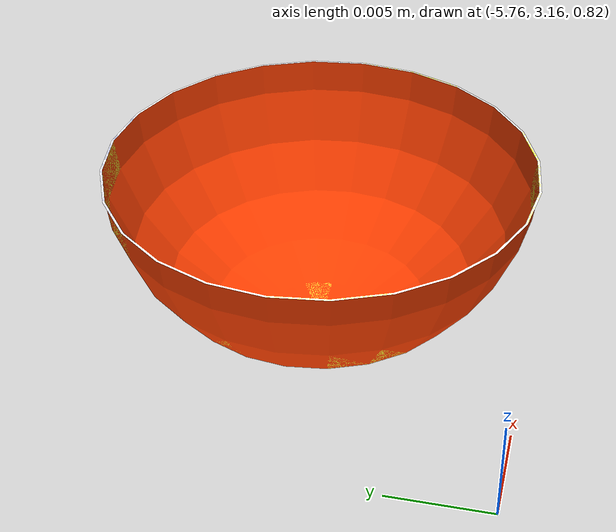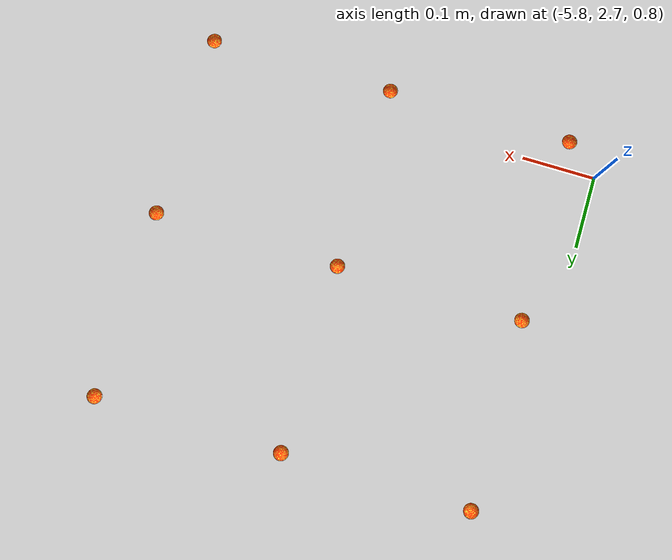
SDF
<sdf version="1.4">
 <world name="default">
  <include><uri>model://ground_plane</uri></include>
  <include><uri>model://sun</uri></include>
  <include><uri>model://bracket</uri><name>cube1</name><pose>3.8 3.15 0.83 0 0 0.78</pose></include>
  <include><uri>model://bracket</uri><name>cube2</name><pose>-3.24 -4.05 0.83 0 0 -0.78</pose></include>
  <include><uri>model://bowl</uri><pose>-5.5 2.92 0.83 0 0 0</pose><name>bowl1</name></include>
  <include><uri>model://bowl</uri><pose>-5.25 2.92 0.83 0 0 0</pose><name>bowl2</name></include>
  <include><uri>model://bowl</uri><pose>-5.75 2.92 0.83 0 0 0</pose><name>bowl3</name></include>
  <include><uri>model://bowl</uri><pose>-5.5 2.67 0.83 0 0 0</pose><name>bowl4</name></include>
  <include><uri>model://bowl</uri><pose>-5.5 3.17 0.83 0 0 0</pose><name>bowl5</name></include>
  <include><uri>model://bowl</uri><pose>-5.25 3.17 0.83 0 0 0</pose><name>bowl6</name></include>
  <include><uri>model://bowl</uri><pose>-5.25 2.67 0.83 0 0 0</pose><name>bowl7</name></include>
  <include><uri>model://bowl</uri><pose>-5.75 3.17 0.83 0 0 0</pose><name>bowl8</name></include>
  <include><uri>model://bowl</uri><pose>-5.75 2.67 0.83 0 0 0</pose><name>bowl9</name></include>
 </world>
</sdf>

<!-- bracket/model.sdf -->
<sdf version='1.4'>
  <model name="bracket">
      <static>0</static>
      <link name='link'>
        <inertial>
          <mass>0.25</mass>
          <inertia>
            <ixx>0.001</ixx>
            <ixy>0.000000</ixy>
            <ixz>0.000000</ixz>
            <iyy>0.001</iyy>
            <iyz>0.000000</iyz>
            <izz>0.001</izz>
          </inertia>
        </inertial>
        <collision name='collision1'>
          <pose>-0.035 0 0 0 0 0</pose>
          <geometry>
            <box>
              <size>0.006 0.070 0.070</size>
            </box>
          </geometry>
          <surface>
            <friction>
              <ode>
                <mu>30.0</mu>
                <mu2>30.0</mu2>
              </ode>
            </friction>
            <contact>
              <ode>
                <kp>1000000.0</kp>
                <kd>100.0</kd>
                <max_vel>1.0</max_vel>
                <min_depth>0.002</min_depth>
              </ode>
            </contact>
          </surface>
        </collision>
        <collision name='collision2'>
          <pose>0 0 -0.035 0 0 0</pose>
          <geometry>
            <box>
              <size>0.070 0.070 0.006</size>
            </box>
          </geometry>
          <surface>
            <friction>
              <ode>
                <mu>30.0</mu>
                <mu2>30.0</mu2>
              </ode>
            </friction>
            <contact>
              <ode>
                <kp>1000000.0</kp>
                <kd>100.0</kd>
                <max_vel>1.0</max_vel>
                <min_depth>0.002</min_depth>
              </ode>
            </contact>
          </surface>
        </collision>
        <visual name='visual1'>
          <pose>-0.035 0 0 0 0 0</pose>
          <geometry>
            <box>
              <size>0.006 0.070 0.070</size>
            </box>
          </geometry>
          <material>
            <script>
              <uri>file://media/materials/scripts/gazebo.material</uri>
              <name>Gazebo/Green</name>
            </script>
          </material>
        </visual>
        <visual name='visual2'>
          <pose>0 0 -0.035 0 0 0</pose>
          <geometry>
            <box>
              <size>0.070 0.070 0.006</size>
            </box>
          </geometry>
          <material>
            <script>
              <uri>file://media/materials/scripts/gazebo.material</uri>
              <name>Gazebo/Green</name>
            </script>
          </material>
        </visual>
        <velocity_decay>
          <linear>0.000000</linear>
          <angular>0.000000</angular>
        </velocity_decay>
        <self_collide>0</self_collide>
        <kinematic>0</kinematic>
        <gravity>1</gravity>
      </link>
  </model>
</sdf>

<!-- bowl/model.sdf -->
<sdf version="1.4">
  <model name="bowl">
    <link name="link">
      <collision name="collision">
        <pose>0 0 0 0 0 0</pose>
        <geometry>
          <mesh>
            <uri>model://bowl/meshes/bowl.dae</uri>
          </mesh>
        </geometry>
      </collision>
      <visual name="visual">
        <pose>0 0 0 0 0 0</pose>
        <geometry>
          <mesh>
            <uri>model://bowl/meshes/bowl.dae</uri>
          </mesh>
        </geometry>
      </visual>
    </link>
    <static>1</static>
  </model>
</sdf>
